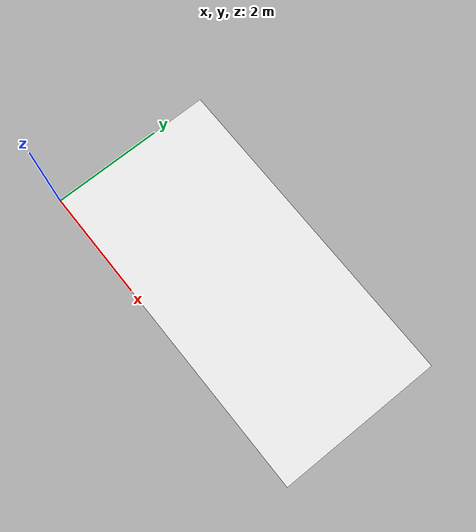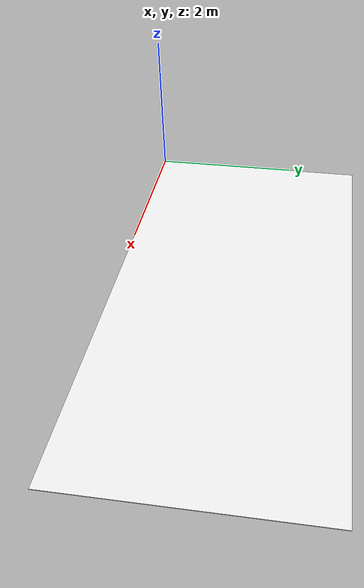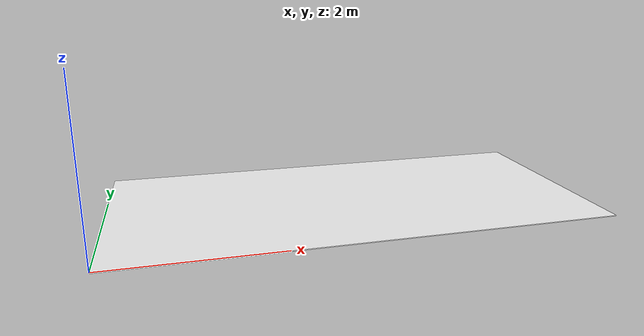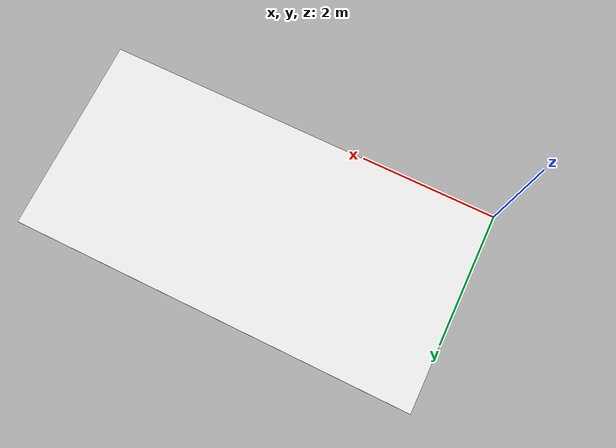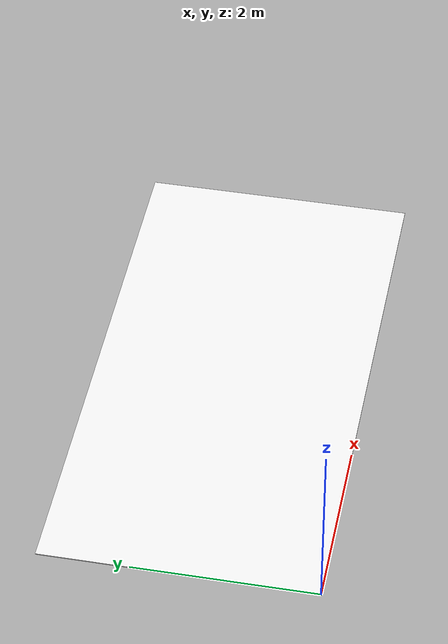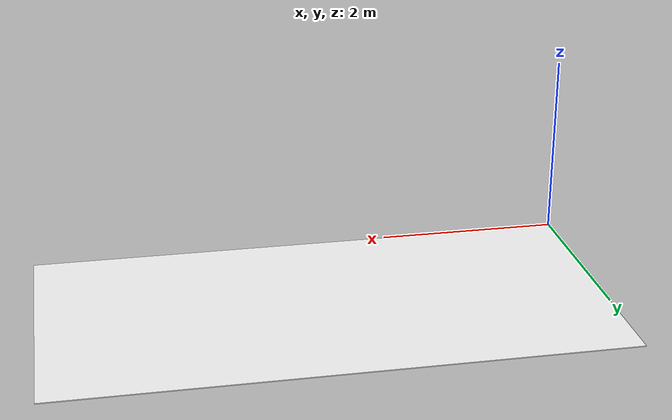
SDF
<sdf version="1.4">
  <world name="table_world">

    <scene>
      <ambient>0.6 0.6 0.6 1</ambient>
      <background>0.4 0.4 0.4 1</background>
      <shadows>true</shadows>
    </scene>

    <include>
      <uri>model://sun</uri>
    </include>

    <!-- White 6m x 3m floor surface.
         Spans x: [0, 6], y: [0, 3] → center at (3, 1.5).
         Thin box (1 cm) sits just below z=0 so the robot rests on it. -->
    <model name="table_floor">
      <static>true</static>
      <pose>3 1.5 -0.005 0 0 0</pose>
      <link name="link">
        <collision name="collision">
          <geometry>
            <box><size>6 3 0.01</size></box>
          </geometry>
        </collision>
        <visual name="visual">
          <geometry>
            <box><size>6 3 0.01</size></box>
          </geometry>
          <material>
            <ambient>1 1 1 1</ambient>
            <diffuse>1 1 1 1</diffuse>
            <specular>0.2 0.2 0.2 1</specular>
            <emissive>0 0 0 1</emissive>
          </material>
        </visual>
      </link>
    </model>

    <physics type="ode">
      <real_time_update_rate>1000.0</real_time_update_rate>
      <max_step_size>0.001</max_step_size>
      <real_time_factor>1</real_time_factor>
      <ode>
        <solver>
          <type>quick</type>
          <iters>150</iters>
          <sor>1.4</sor>
        </solver>
        <constraints>
          <cfm>0.00001</cfm>
          <erp>0.2</erp>
          <contact_max_correcting_vel>2000.0</contact_max_correcting_vel>
          <contact_surface_layer>0.01</contact_surface_layer>
        </constraints>
      </ode>
    </physics>

  </world>
</sdf>
